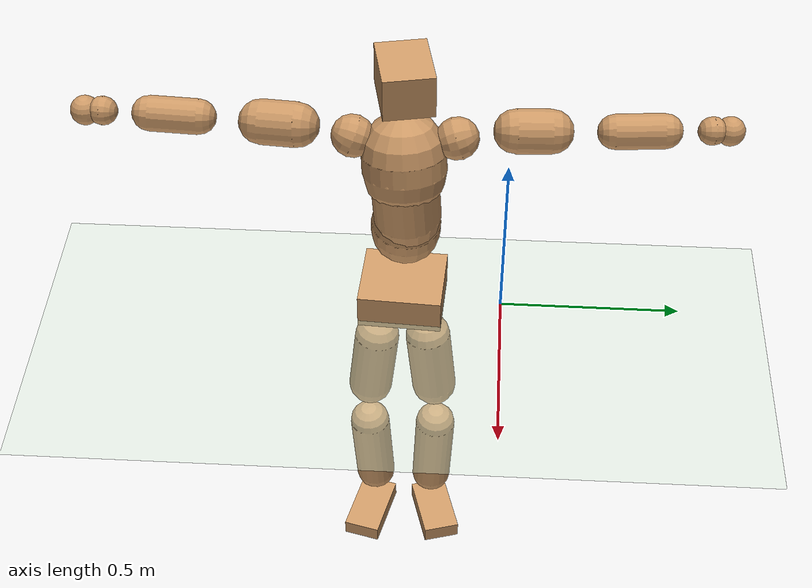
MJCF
<mujoco model="humanoid">
  <compiler coordinate="local" angle="radian"/>
  <default>
    <joint damping="0.0" armature="0.01" stiffness="0.0" limited="true"/>
    <geom conaffinity="1" condim="3" contype="7" margin="0.001" rgba="0.8 0.6 .4 1"/>
  </default>
  <asset>
    <texture type="skybox" builtin="gradient" rgb1=".4 .5 .6" rgb2="0 0 0" width="100" height="100"/>
    <texture builtin="flat" height="1278" mark="cross" markrgb="1 1 1" name="texgeom" random="0.01" rgb1="0.8 0.6 0.4" rgb2="0.8 0.6 0.4" type="cube" width="127"/>
    <texture builtin="checker" height="100" name="texplane" rgb1="0 0 0" rgb2="0.8 0.8 0.8" type="2d" width="100"/>
    <material name="MatPlane" reflectance="0.5" shininess="1" specular="1" texrepeat="60 60" texture="texplane"/>
    <material name="geom" texture="texgeom" texuniform="true"/>
  </asset>
  <worldbody>
    <light cutoff="100" diffuse="1 1 1" dir="-0 0 -1.3" directional="true" exponent="1" pos="0 0 1.3" specular=".1 .1 .1"/>
    <geom conaffinity="1" condim="3" name="floor" pos="0 0 0" rgba="0.8 0.9 0.8 1" size="100 100 .2" type="plane" material="MatPlane"/>
    <body name="Pelvis" pos="-0.002 -0.2776 0.0392">
      <freejoint name="Pelvis"/>
      <geom type="box" contype="1" conaffinity="1" density="5359.374786" pos="-0.0108 0.0006 -0.0081" size="0.1041 0.1163 0.0507" quat="0.9996 0.0000 0.0000 -0.0284" name="Pelvis"/>
      <body name="L_Hip" pos="-0.0123 0.0635 -0.0906">
        <joint name="L_Hip_x" type="hinge" pos="0 0 0" axis="1 0 0" stiffness="1600" damping="160" armature="0.02" range="-180.0000 180.0000"/>
        <joint name="L_Hip_y" type="hinge" pos="0 0 0" axis="0 1 0" stiffness="1600" damping="160" armature="0.02" range="-180.0000 180.0000"/>
        <joint name="L_Hip_z" type="hinge" pos="0 0 0" axis="0 0 1" stiffness="1600" damping="160" armature="0.02" range="-180.0000 180.0000"/>
        <geom type="capsule" contype="1" conaffinity="1" density="2040.816327" size="0.0645" fromto="0.0019 0.0094 -0.0940 0.0062 0.0302 -0.3006" name="L_Hip"/>
        <body name="L_Knee" pos="0.0081 0.0396 -0.3946">
          <joint name="L_Knee_x" type="hinge" pos="0 0 0" axis="1 0 0" stiffness="1600" damping="160" armature="0.02" range="-180.0000 180.0000"/>
          <joint name="L_Knee_y" type="hinge" pos="0 0 0" axis="0 1 0" stiffness="1600" damping="160" armature="0.02" range="-180.0000 180.0000"/>
          <joint name="L_Knee_z" type="hinge" pos="0 0 0" axis="0 0 1" stiffness="1600" damping="160" armature="0.02" range="-180.0000 180.0000"/>
          <geom type="capsule" contype="1" conaffinity="1" density="1234.567901" size="0.0593" fromto="-0.0082 -0.0035 -0.0888 -0.0341 -0.0147 -0.3679" name="L_Knee"/>
          <body name="L_Ankle" pos="-0.0423 -0.0182 -0.4567">
            <joint name="L_Ankle_x" type="hinge" pos="0 0 0" axis="1 0 0" stiffness="1600" damping="160" armature="0.02" range="-180.0000 180.0000"/>
            <joint name="L_Ankle_y" type="hinge" pos="0 0 0" axis="0 1 0" stiffness="1600" damping="160" armature="0.02" range="-180.0000 180.0000"/>
            <joint name="L_Ankle_z" type="hinge" pos="0 0 0" axis="0 0 1" stiffness="1600" damping="160" armature="0.02" range="-180.0000 180.0000"/>
            <geom type="box" contype="1" conaffinity="1" density="1000.000046" pos="0.0674 0.0192 -0.0323" size="0.0965 0.0539 0.0255" quat="0.9903 0.0000 0.0000 0.1386" name="L_Ankle"/>
            <body name="L_Toe" pos="0.1348 0.0385 -0.0646">
              <joint name="L_Toe_x" type="hinge" pos="0 0 0" axis="1 0 0" stiffness="1000" damping="100" armature="0.02" range="-180.0000 180.0000"/>
              <joint name="L_Toe_y" type="hinge" pos="0 0 0" axis="0 1 0" stiffness="1000" damping="100" armature="0.02" range="-180.0000 180.0000"/>
              <joint name="L_Toe_z" type="hinge" pos="0 0 0" axis="0 0 1" stiffness="1000" damping="100" armature="0.02" range="-180.0000 180.0000"/>
              <geom type="box" contype="1" conaffinity="1" density="8632867.613367" pos="0.0000 0.0000 0.0323" size="0.0011 0.0027 0.0013" quat="0.9897 0.0000 0.0000 0.1434" name="L_Toe"/>
            </body>
          </body>
        </body>
      </body>
      <body name="R_Hip" pos="-0.0068 -0.0646 -0.1005">
        <joint name="R_Hip_x" type="hinge" pos="0 0 0" axis="1 0 0" stiffness="1600" damping="160" armature="0.02" range="-180.0000 180.0000"/>
        <joint name="R_Hip_y" type="hinge" pos="0 0 0" axis="0 1 0" stiffness="1600" damping="160" armature="0.02" range="-180.0000 180.0000"/>
        <joint name="R_Hip_z" type="hinge" pos="0 0 0" axis="0 0 1" stiffness="1600" damping="160" armature="0.02" range="-180.0000 180.0000"/>
        <geom type="capsule" contype="1" conaffinity="1" density="2040.816327" size="0.0643" fromto="-0.0010 -0.0101 -0.0937 -0.0033 -0.0325 -0.3018" name="R_Hip"/>
        <body name="R_Knee" pos="-0.0044 -0.0426 -0.3955">
          <joint name="R_Knee_x" type="hinge" pos="0 0 0" axis="1 0 0" stiffness="1600" damping="160" armature="0.02" range="-180.0000 180.0000"/>
          <joint name="R_Knee_y" type="hinge" pos="0 0 0" axis="0 1 0" stiffness="1600" damping="160" armature="0.02" range="-180.0000 180.0000"/>
          <joint name="R_Knee_z" type="hinge" pos="0 0 0" axis="0 0 1" stiffness="1600" damping="160" armature="0.02" range="-180.0000 180.0000"/>
          <geom type="capsule" contype="1" conaffinity="1" density="1234.567901" size="0.0594" fromto="-0.0077 0.0043 -0.0889 -0.0312 0.0176 -0.3617" name="R_Knee"/>
          <body name="R_Ankle" pos="-0.0389 0.0219 -0.4507">
            <joint name="R_Ankle_x" type="hinge" pos="0 0 0" axis="1 0 0" stiffness="1600" damping="160" armature="0.02" range="-180.0000 180.0000"/>
            <joint name="R_Ankle_y" type="hinge" pos="0 0 0" axis="0 1 0" stiffness="1600" damping="160" armature="0.02" range="-180.0000 180.0000"/>
            <joint name="R_Ankle_z" type="hinge" pos="0 0 0" axis="0 0 1" stiffness="1600" damping="160" armature="0.02" range="-180.0000 180.0000"/>
            <geom type="box" contype="1" conaffinity="1" density="1000.000008" pos="0.0719 -0.0179 -0.0330" size="0.0992 0.0545 0.0248" quat="0.9926 0.0000 0.0000 -0.1216" name="R_Ankle"/>
            <body name="R_Toe" pos="0.1439 -0.0358 -0.066">
              <joint name="R_Toe_x" type="hinge" pos="0 0 0" axis="1 0 0" stiffness="1000" damping="100" armature="0.02" range="-180.0000 180.0000"/>
              <joint name="R_Toe_y" type="hinge" pos="0 0 0" axis="0 1 0" stiffness="1000" damping="100" armature="0.02" range="-180.0000 180.0000"/>
              <joint name="R_Toe_z" type="hinge" pos="0 0 0" axis="0 0 1" stiffness="1000" damping="100" armature="0.02" range="-180.0000 180.0000"/>
              <geom type="box" contype="1" conaffinity="1" density="8293495.342471" pos="0.0000 0.0000 0.0350" size="0.0012 0.0027 0.0013" quat="0.9935 0.0000 0.0000 -0.1135" name="R_Toe"/>
            </body>
          </body>
        </body>
      </body>
      <body name="Torso" pos="-0.0459 0.0048 0.1423">
        <joint name="Torso_x" type="hinge" pos="0 0 0" axis="1 0 0" stiffness="2000" damping="200" armature="0.02" range="-180.0000 180.0000"/>
        <joint name="Torso_y" type="hinge" pos="0 0 0" axis="0 1 0" stiffness="2000" damping="200" armature="0.02" range="-180.0000 180.0000"/>
        <joint name="Torso_z" type="hinge" pos="0 0 0" axis="0 0 1" stiffness="2000" damping="200" armature="0.02" range="-180.0000 180.0000"/>
        <geom type="capsule" contype="1" conaffinity="1" density="2040.816327" size="0.0955" fromto="0.0180 0.0038 0.0937 0.0111 0.0024 0.0577" name="Torso"/>
        <body name="Spine" pos="0.029 0.0062 0.1514">
          <joint name="Spine_x" type="hinge" pos="0 0 0" axis="1 0 0" stiffness="2000" damping="200" armature="0.02" range="-180.0000 180.0000"/>
          <joint name="Spine_y" type="hinge" pos="0 0 0" axis="0 1 0" stiffness="2000" damping="200" armature="0.02" range="-180.0000 180.0000"/>
          <joint name="Spine_z" type="hinge" pos="0 0 0" axis="0 0 1" stiffness="2000" damping="200" armature="0.02" range="-180.0000 180.0000"/>
          <geom type="capsule" contype="1" conaffinity="1" density="2040.816327" size="0.0924" fromto="0.0051 -0.0052 0.0921 -0.0016 0.0016 -0.0290" name="Spine"/>
          <body name="Chest" pos="0.0035 -0.0036 0.0631">
            <joint name="Chest_x" type="hinge" pos="0 0 0" axis="1 0 0" stiffness="2000" damping="200" armature="0.02" range="-180.0000 180.0000"/>
            <joint name="Chest_y" type="hinge" pos="0 0 0" axis="0 1 0" stiffness="2000" damping="200" armature="0.02" range="-180.0000 180.0000"/>
            <joint name="Chest_z" type="hinge" pos="0 0 0" axis="0 0 1" stiffness="2000" damping="200" armature="0.02" range="-180.0000 180.0000"/>
            <geom type="capsule" contype="1" conaffinity="1" density="2040.816327" size="0.1133" fromto="-0.0250 -0.0055 0.1104 -0.0131 -0.0029 0.0579" name="Chest"/>
            <body name="Neck" pos="-0.0515 -0.014 0.245">
              <joint name="Neck_x" type="hinge" pos="0 0 0" axis="1 0 0" stiffness="1000" damping="100" armature="0.02" range="-180.0000 180.0000"/>
              <joint name="Neck_y" type="hinge" pos="0 0 0" axis="0 1 0" stiffness="1000" damping="100" armature="0.02" range="-180.0000 180.0000"/>
              <joint name="Neck_z" type="hinge" pos="0 0 0" axis="0 0 1" stiffness="1000" damping="100" armature="0.02" range="-180.0000 180.0000"/>
              <geom type="capsule" contype="1" conaffinity="1" density="1000" size="0.0497" fromto="0.0260 0.0043 0.0454 0.0270 0.0044 0.0472" name="Neck"/>
              <body name="Head" pos="0.053 0.0087 0.0926">
                <joint name="Head_x" type="hinge" pos="0 0 0" axis="1 0 0" stiffness="1000" damping="100" armature="0.02" range="-180.0000 180.0000"/>
                <joint name="Head_y" type="hinge" pos="0 0 0" axis="0 1 0" stiffness="1000" damping="100" armature="0.02" range="-180.0000 180.0000"/>
                <joint name="Head_z" type="hinge" pos="0 0 0" axis="0 0 1" stiffness="1000" damping="100" armature="0.02" range="-180.0000 180.0000"/>
                <geom type="box" contype="1" conaffinity="1" density="2249.999816" pos="0.0275 0.0053 0.0473" size="0.0827 0.0668 0.0587" quat="0.9954 0.0000 0.0000 0.0957" name="Head"/>
              </body>
            </body>
            <body name="L_Thorax" pos="-0.0301 0.0712 0.1304">
              <joint name="L_Thorax_x" type="hinge" pos="0 0 0" axis="1 0 0" stiffness="1000" damping="100" armature="0.02" range="-180.0000 180.0000"/>
              <joint name="L_Thorax_y" type="hinge" pos="0 0 0" axis="0 1 0" stiffness="1000" damping="100" armature="0.02" range="-180.0000 180.0000"/>
              <joint name="L_Thorax_z" type="hinge" pos="0 0 0" axis="0 0 1" stiffness="1000" damping="100" armature="0.02" range="-180.0000 180.0000"/>
              <geom type="capsule" contype="1" conaffinity="1" density="1000" size="0.0574" fromto="-0.0101 0.0614 0.0200 -0.0104 0.0633 0.0206" name="L_Thorax"/>
              <body name="L_Shoulder" pos="-0.0205 0.1248 0.0406">
                <joint name="L_Shoulder_x" type="hinge" pos="0 0 0" axis="1 0 0" stiffness="1000" damping="100" armature="0.02" range="-720.0000 720.0000"/>
                <joint name="L_Shoulder_y" type="hinge" pos="0 0 0" axis="0 1 0" stiffness="1000" damping="100" armature="0.02" range="-720.0000 720.0000"/>
                <joint name="L_Shoulder_z" type="hinge" pos="0 0 0" axis="0 0 1" stiffness="1000" damping="100" armature="0.02" range="-720.0000 720.0000"/>
                <geom type="capsule" contype="1" conaffinity="1" density="1000" size="0.0596" fromto="-0.0082 0.0892 -0.0042 -0.0167 0.1813 -0.0086" name="L_Shoulder"/>
                <body name="L_Elbow" pos="-0.0249 0.2705 -0.0128">
                  <joint name="L_Elbow_x" type="hinge" pos="0 0 0" axis="1 0 0" stiffness="1000" damping="100" armature="0.02" range="-720.0000 720.0000"/>
                  <joint name="L_Elbow_y" type="hinge" pos="0 0 0" axis="0 1 0" stiffness="1000" damping="100" armature="0.02" range="-720.0000 720.0000"/>
                  <joint name="L_Elbow_z" type="hinge" pos="0 0 0" axis="0 0 1" stiffness="1000" damping="100" armature="0.02" range="-720.0000 720.0000"/>
                  <geom type="capsule" contype="1" conaffinity="1" density="1000" size="0.0468" fromto="-0.0020 0.0767 0.0033 -0.0054 0.2063 0.0088" name="L_Elbow"/>
                  <body name="L_Wrist" pos="-0.0074 0.2829 0.0121">
                    <joint name="L_Wrist_x" type="hinge" pos="0 0 0" axis="1 0 0" stiffness="600" damping="60" armature="0.02" range="-180.0000 180.0000"/>
                    <joint name="L_Wrist_y" type="hinge" pos="0 0 0" axis="0 1 0" stiffness="600" damping="60" armature="0.02" range="-180.0000 180.0000"/>
                    <joint name="L_Wrist_z" type="hinge" pos="0 0 0" axis="0 0 1" stiffness="600" damping="60" armature="0.02" range="-180.0000 180.0000"/>
                    <geom type="capsule" contype="1" conaffinity="1" density="1000" size="0.0378" fromto="-0.0083 0.0465 -0.0055 -0.0087 0.0485 -0.0057" name="L_Wrist"/>
                    <body name="L_Hand" pos="-0.017 0.095 -0.0111">
                      <joint name="L_Hand_x" type="hinge" pos="0 0 0" axis="1 0 0" stiffness="600" damping="60" armature="0.02" range="-180.0000 180.0000"/>
                      <joint name="L_Hand_y" type="hinge" pos="0 0 0" axis="0 1 0" stiffness="600" damping="60" armature="0.02" range="-180.0000 180.0000"/>
                      <joint name="L_Hand_z" type="hinge" pos="0 0 0" axis="0 0 1" stiffness="600" damping="60" armature="0.02" range="-180.0000 180.0000"/>
                      <geom type="sphere" contype="1" conaffinity="1" density="1000" size="0.0390" pos="0.0000 0.0000 0.0000" name="L_Hand"/>
                    </body>
                  </body>
                </body>
              </body>
            </body>
            <body name="R_Thorax" pos="-0.0327 -0.0824 0.1293">
              <joint name="R_Thorax_x" type="hinge" pos="0 0 0" axis="1 0 0" stiffness="1000" damping="100" armature="0.02" range="-180.0000 180.0000"/>
              <joint name="R_Thorax_y" type="hinge" pos="0 0 0" axis="0 1 0" stiffness="1000" damping="100" armature="0.02" range="-180.0000 180.0000"/>
              <joint name="R_Thorax_z" type="hinge" pos="0 0 0" axis="0 0 1" stiffness="1000" damping="100" armature="0.02" range="-180.0000 180.0000"/>
              <geom type="capsule" contype="1" conaffinity="1" density="1000" size="0.0574" fromto="-0.0042 -0.0564 0.0207 -0.0043 -0.0583 0.0214" name="R_Thorax"/>
              <body name="R_Shoulder" pos="-0.0085 -0.1148 0.042">
                <joint name="R_Shoulder_x" type="hinge" pos="0 0 0" axis="1 0 0" stiffness="1000" damping="100" armature="0.02" range="-720.0000 720.0000"/>
                <joint name="R_Shoulder_y" type="hinge" pos="0 0 0" axis="0 1 0" stiffness="1000" damping="100" armature="0.02" range="-720.0000 720.0000"/>
                <joint name="R_Shoulder_z" type="hinge" pos="0 0 0" axis="0 0 1" stiffness="1000" damping="100" armature="0.02" range="-720.0000 720.0000"/>
                <geom type="capsule" contype="1" conaffinity="1" density="1000" size="0.0604" fromto="-0.0109 -0.0896 -0.0032 -0.0226 -0.1853 -0.0066" name="R_Shoulder"/>
                <body name="R_Elbow" pos="-0.0335 -0.2749 -0.0097">
                  <joint name="R_Elbow_x" type="hinge" pos="0 0 0" axis="1 0 0" stiffness="1000" damping="100" armature="0.02" range="-720.0000 720.0000"/>
                  <joint name="R_Elbow_y" type="hinge" pos="0 0 0" axis="0 1 0" stiffness="1000" damping="100" armature="0.02" range="-720.0000 720.0000"/>
                  <joint name="R_Elbow_z" type="hinge" pos="0 0 0" axis="0 0 1" stiffness="1000" damping="100" armature="0.02" range="-720.0000 720.0000"/>
                  <geom type="capsule" contype="1" conaffinity="1" density="1000" size="0.0475" fromto="-0.0022 -0.0775 0.0019 -0.0060 -0.2080 0.0052" name="R_Elbow"/>
                  <body name="R_Wrist" pos="-0.0082 -0.2854 0.0071">
                    <joint name="R_Wrist_x" type="hinge" pos="0 0 0" axis="1 0 0" stiffness="600" damping="60" armature="0.02" range="-180.0000 180.0000"/>
                    <joint name="R_Wrist_y" type="hinge" pos="0 0 0" axis="0 1 0" stiffness="600" damping="60" armature="0.02" range="-180.0000 180.0000"/>
                    <joint name="R_Wrist_z" type="hinge" pos="0 0 0" axis="0 0 1" stiffness="600" damping="60" armature="0.02" range="-180.0000 180.0000"/>
                    <geom type="capsule" contype="1" conaffinity="1" density="1000" size="0.0387" fromto="-0.0051 -0.0478 -0.0046 -0.0054 -0.0498 -0.0047" name="R_Wrist"/>
                    <body name="R_Hand" pos="-0.0105 -0.0976 -0.0093">
                      <joint name="R_Hand_x" type="hinge" pos="0 0 0" axis="1 0 0" stiffness="600" damping="60" armature="0.02" range="-180.0000 180.0000"/>
                      <joint name="R_Hand_y" type="hinge" pos="0 0 0" axis="0 1 0" stiffness="600" damping="60" armature="0.02" range="-180.0000 180.0000"/>
                      <joint name="R_Hand_z" type="hinge" pos="0 0 0" axis="0 0 1" stiffness="600" damping="60" armature="0.02" range="-180.0000 180.0000"/>
                      <geom type="sphere" contype="1" conaffinity="1" density="1000" size="0.0398" pos="0.0000 0.0000 0.0000" name="R_Hand"/>
                    </body>
                  </body>
                </body>
              </body>
            </body>
          </body>
        </body>
      </body>
    </body>
  </worldbody>
  <actuator>
    <motor name="L_Hip_x" joint="L_Hip_x" gear="500"/>
    <motor name="L_Hip_y" joint="L_Hip_y" gear="500"/>
    <motor name="L_Hip_z" joint="L_Hip_z" gear="500"/>
    <motor name="L_Knee_x" joint="L_Knee_x" gear="500"/>
    <motor name="L_Knee_y" joint="L_Knee_y" gear="500"/>
    <motor name="L_Knee_z" joint="L_Knee_z" gear="500"/>
    <motor name="L_Ankle_x" joint="L_Ankle_x" gear="500"/>
    <motor name="L_Ankle_y" joint="L_Ankle_y" gear="500"/>
    <motor name="L_Ankle_z" joint="L_Ankle_z" gear="500"/>
    <motor name="L_Toe_x" joint="L_Toe_x" gear="500"/>
    <motor name="L_Toe_y" joint="L_Toe_y" gear="500"/>
    <motor name="L_Toe_z" joint="L_Toe_z" gear="500"/>
    <motor name="R_Hip_x" joint="R_Hip_x" gear="500"/>
    <motor name="R_Hip_y" joint="R_Hip_y" gear="500"/>
    <motor name="R_Hip_z" joint="R_Hip_z" gear="500"/>
    <motor name="R_Knee_x" joint="R_Knee_x" gear="500"/>
    <motor name="R_Knee_y" joint="R_Knee_y" gear="500"/>
    <motor name="R_Knee_z" joint="R_Knee_z" gear="500"/>
    <motor name="R_Ankle_x" joint="R_Ankle_x" gear="500"/>
    <motor name="R_Ankle_y" joint="R_Ankle_y" gear="500"/>
    <motor name="R_Ankle_z" joint="R_Ankle_z" gear="500"/>
    <motor name="R_Toe_x" joint="R_Toe_x" gear="500"/>
    <motor name="R_Toe_y" joint="R_Toe_y" gear="500"/>
    <motor name="R_Toe_z" joint="R_Toe_z" gear="500"/>
    <motor name="Torso_x" joint="Torso_x" gear="500"/>
    <motor name="Torso_y" joint="Torso_y" gear="500"/>
    <motor name="Torso_z" joint="Torso_z" gear="500"/>
    <motor name="Spine_x" joint="Spine_x" gear="500"/>
    <motor name="Spine_y" joint="Spine_y" gear="500"/>
    <motor name="Spine_z" joint="Spine_z" gear="500"/>
    <motor name="Chest_x" joint="Chest_x" gear="500"/>
    <motor name="Chest_y" joint="Chest_y" gear="500"/>
    <motor name="Chest_z" joint="Chest_z" gear="500"/>
    <motor name="Neck_x" joint="Neck_x" gear="500"/>
    <motor name="Neck_y" joint="Neck_y" gear="500"/>
    <motor name="Neck_z" joint="Neck_z" gear="500"/>
    <motor name="Head_x" joint="Head_x" gear="500"/>
    <motor name="Head_y" joint="Head_y" gear="500"/>
    <motor name="Head_z" joint="Head_z" gear="500"/>
    <motor name="L_Thorax_x" joint="L_Thorax_x" gear="500"/>
    <motor name="L_Thorax_y" joint="L_Thorax_y" gear="500"/>
    <motor name="L_Thorax_z" joint="L_Thorax_z" gear="500"/>
    <motor name="L_Shoulder_x" joint="L_Shoulder_x" gear="500"/>
    <motor name="L_Shoulder_y" joint="L_Shoulder_y" gear="500"/>
    <motor name="L_Shoulder_z" joint="L_Shoulder_z" gear="500"/>
    <motor name="L_Elbow_x" joint="L_Elbow_x" gear="500"/>
    <motor name="L_Elbow_y" joint="L_Elbow_y" gear="500"/>
    <motor name="L_Elbow_z" joint="L_Elbow_z" gear="500"/>
    <motor name="L_Wrist_x" joint="L_Wrist_x" gear="500"/>
    <motor name="L_Wrist_y" joint="L_Wrist_y" gear="500"/>
    <motor name="L_Wrist_z" joint="L_Wrist_z" gear="500"/>
    <motor name="L_Hand_x" joint="L_Hand_x" gear="500"/>
    <motor name="L_Hand_y" joint="L_Hand_y" gear="500"/>
    <motor name="L_Hand_z" joint="L_Hand_z" gear="500"/>
    <motor name="R_Thorax_x" joint="R_Thorax_x" gear="500"/>
    <motor name="R_Thorax_y" joint="R_Thorax_y" gear="500"/>
    <motor name="R_Thorax_z" joint="R_Thorax_z" gear="500"/>
    <motor name="R_Shoulder_x" joint="R_Shoulder_x" gear="500"/>
    <motor name="R_Shoulder_y" joint="R_Shoulder_y" gear="500"/>
    <motor name="R_Shoulder_z" joint="R_Shoulder_z" gear="500"/>
    <motor name="R_Elbow_x" joint="R_Elbow_x" gear="500"/>
    <motor name="R_Elbow_y" joint="R_Elbow_y" gear="500"/>
    <motor name="R_Elbow_z" joint="R_Elbow_z" gear="500"/>
    <motor name="R_Wrist_x" joint="R_Wrist_x" gear="500"/>
    <motor name="R_Wrist_y" joint="R_Wrist_y" gear="500"/>
    <motor name="R_Wrist_z" joint="R_Wrist_z" gear="500"/>
    <motor name="R_Hand_x" joint="R_Hand_x" gear="500"/>
    <motor name="R_Hand_y" joint="R_Hand_y" gear="500"/>
    <motor name="R_Hand_z" joint="R_Hand_z" gear="500"/>
  </actuator>
  <contact>
    <exclude body1="Torso" body2="Chest"/>
    <exclude body1="Head" body2="Chest"/>
    <exclude body1="R_Knee" body2="R_Toe"/>
    <exclude body1="R_Knee" body2="L_Ankle"/>
    <exclude body1="R_Knee" body2="L_Toe"/>
    <exclude body1="L_Knee" body2="L_Toe"/>
    <exclude body1="L_Knee" body2="R_Ankle"/>
    <exclude body1="L_Knee" body2="R_Toe"/>
    <exclude body1="L_Shoulder" body2="Chest"/>
    <exclude body1="R_Shoulder" body2="Chest"/>
  </contact>
  <sensor/>
  <size njmax="700" nconmax="700"/>
</mujoco>
